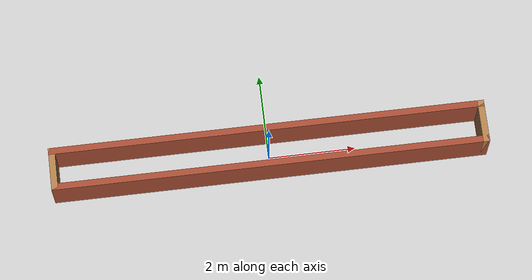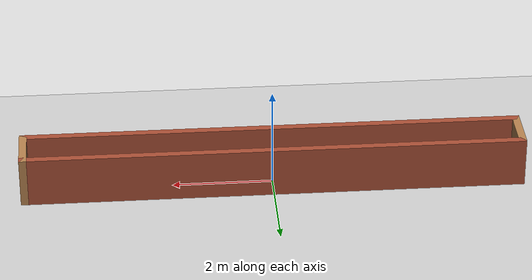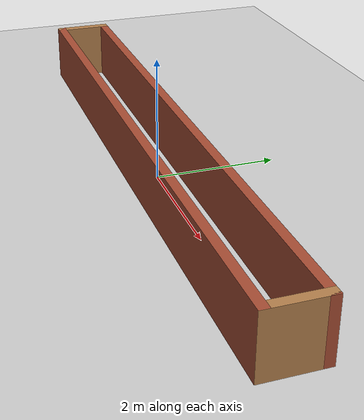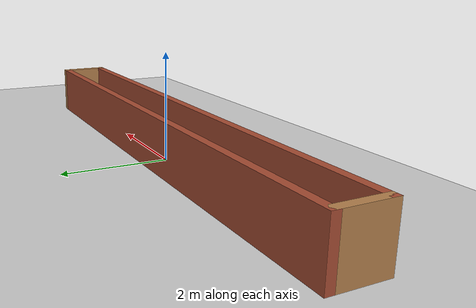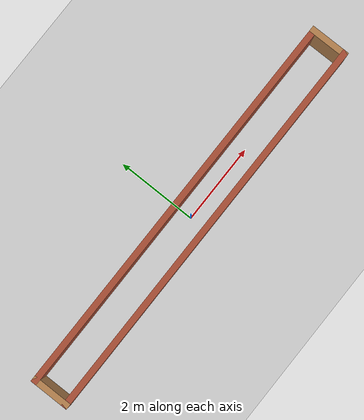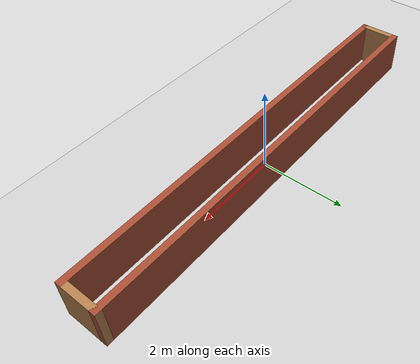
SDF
<sdf version="1.6">
 <world name="default">
  <include><uri>model://straight_corridor</uri></include>
  <light name="sun" type="directional">
   <cast_shadows>0</cast_shadows>
   <pose>0 0 10 0 -0 0</pose>
   <diffuse>1 1 1 1</diffuse>
   <specular>0.0 0.0 0.0 1</specular>
   <direction>-0.5 0.1 -0.9</direction>
  </light>
  <model name="ground_plane">
   <static>1</static>
   <link name="link">
    <collision name="collision">
     <geometry><plane><normal>0 0 1</normal><size>100 100</size></plane></geometry>
     <surface><friction><ode><mu>100</mu><mu2>50</mu2></ode></friction></surface>
    </collision>
    <visual name="visual">
     <cast_shadows>0</cast_shadows>
     <geometry><plane><normal>0 0 1</normal><size>100 100</size></plane></geometry>
     <material>
      <script><uri>file://media/materials/scripts/gazebo.material</uri><name>Gazebo/Grey</name></script>
     </material>
    </visual>
   </link>
  </model>
  <gravity>0 0 -9.8</gravity>
  <magnetic_field>6e-06 2.3e-05 -4.2e-05</magnetic_field>
  <atmosphere type="adiabatic"/>
  <physics name="default_physics" default="0" type="ode">
   <max_step_size>0.001</max_step_size>
   <real_time_factor>1</real_time_factor>
   <real_time_update_rate>1000</real_time_update_rate>
  </physics>
  <scene><ambient>0.4 0.4 0.4 1</ambient><background>0.7 0.7 0.7 1</background><shadows>1</shadows></scene>
  <spherical_coordinates>
   <surface_model>EARTH_WGS84</surface_model>
   <latitude_deg>0</latitude_deg>
   <longitude_deg>0</longitude_deg>
   <elevation>0</elevation>
   <heading_deg>0</heading_deg>
  </spherical_coordinates>
 </world>
</sdf>

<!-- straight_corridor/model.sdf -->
<sdf version='1.6'>
  <model name='straight_corridor'>
    <pose frame=''>0 0 0 0 0 0</pose>
    <link name='Wall_0'>
      <collision name='Wall_0_Collision'>
        <geometry>
          <box>
            <size>10.01 0.15 1</size>
          </box>
        </geometry>
        <pose frame=''>0 0 0.5 0 -0 0</pose>
      </collision>
      <visual name='Wall_0_Visual'>
        <pose frame=''>0 0 0.5 0 -0 0</pose>
        <geometry>
          <box>
            <size>10.01 0.15 1</size>
          </box>
        </geometry>
        <material>
          <script>
            <uri>file://media/materials/scripts/gazebo.material</uri>
            <name>Gazebo/Bricks</name>
          </script>
          <ambient>1 1 1 1</ambient>
        </material>
        <meta>
          <layer>0</layer>
        </meta>
      </visual>
      <pose frame=''>-0 -0.425 0 0 -0 0</pose>
    </link>
    <link name='Wall_1'>
      <collision name='Wall_1_Collision'>
        <geometry>
          <box>
            <size>1 0.15 1</size>
          </box>
        </geometry>
        <pose frame=''>0 0 0.5 0 -0 0</pose>
      </collision>
      <visual name='Wall_1_Visual'>
        <pose frame=''>0 0 0.5 0 -0 0</pose>
        <geometry>
          <box>
            <size>1 0.15 1</size>
          </box>
        </geometry>
        <material>
          <script>
            <uri>file://media/materials/scripts/gazebo.material</uri>
            <name>Gazebo/Wood</name>
          </script>
          <ambient>1 1 1 1</ambient>
        </material>
        <meta>
          <layer>0</layer>
        </meta>
      </visual>
      <pose frame=''>4.93 0 0 0 -0 1.5708</pose>
    </link>
    <link name='Wall_2'>
      <collision name='Wall_2_Collision'>
        <geometry>
          <box>
            <size>10.01 0.15 1</size>
          </box>
        </geometry>
        <pose frame=''>0 0 0.5 0 -0 0</pose>
      </collision>
      <visual name='Wall_2_Visual'>
        <pose frame=''>0 0 0.5 0 -0 0</pose>
        <geometry>
          <box>
            <size>10.01 0.15 1</size>
          </box>
        </geometry>
        <material>
          <script>
            <uri>file://media/materials/scripts/gazebo.material</uri>
            <name>Gazebo/Bricks</name>
          </script>
          <ambient>1 1 1 1</ambient>
        </material>
        <meta>
          <layer>0</layer>
        </meta>
      </visual>
      <pose frame=''>-0 0.425 0 0 -0 3.14159</pose>
    </link>
    <link name='Wall_3'>
      <collision name='Wall_3_Collision'>
        <geometry>
          <box>
            <size>1 0.15 1</size>
          </box>
        </geometry>
        <pose frame=''>0 0 0.5 0 -0 0</pose>
      </collision>
      <visual name='Wall_3_Visual'>
        <pose frame=''>0 0 0.5 0 -0 0</pose>
        <geometry>
          <box>
            <size>1 0.15 1</size>
          </box>
        </geometry>
        <material>
          <script>
            <uri>file://media/materials/scripts/gazebo.material</uri>
            <name>Gazebo/Wood</name>
          </script>
          <ambient>1 1 1 1</ambient>
        </material>
        <meta>
          <layer>0</layer>
        </meta>
      </visual>
      <pose frame=''>-4.93 0 0 0 -0 -1.5708</pose>
    </link>
    <static>1</static>
  </model>
</sdf>
